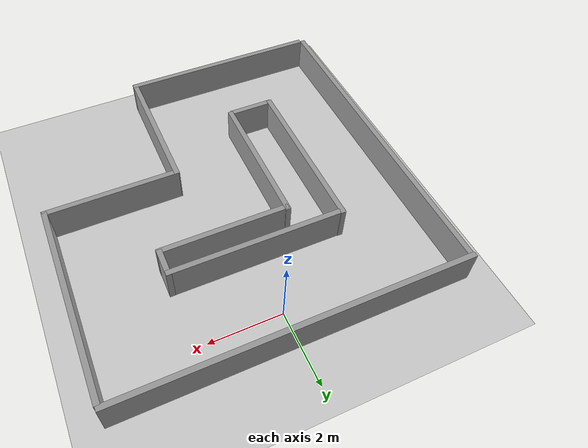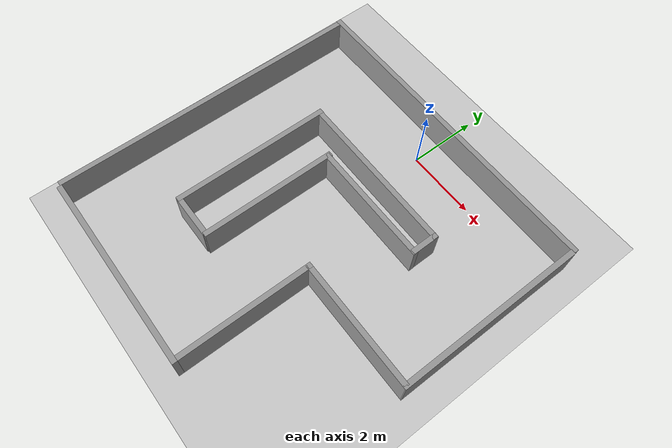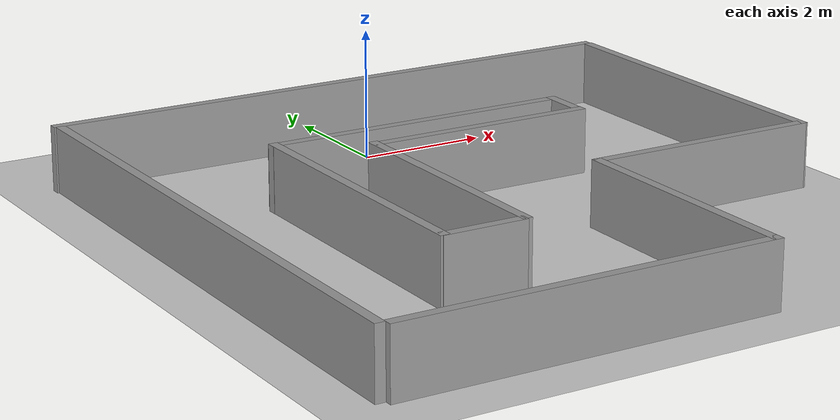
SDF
<sdf version="1.4">
 <world name="default">
  <light name="sun" type="directional">
   <pose>0 0 10 0 -0 0</pose>
   <diffuse>0.8 0.8 0.8 1</diffuse>
   <specular>0.2 0.2 0.2 1</specular>
   <attenuation>
    <range>1000</range>
    <constant>0.9</constant>
    <linear>0.01</linear>
    <quadratic>0.001</quadratic>
   </attenuation>
   <direction>0.5 0.1 -0.9</direction>
  </light>
  <model name="ground_plane">
   <static>1</static>
   <link name="link">
    <collision name="collision">
     <geometry><plane><normal>0 0 1</normal><size>100 100</size></plane></geometry>
     <surface><friction><ode><mu>100</mu><mu2>50</mu2></ode></friction></surface>
    </collision>
    <visual name="visual">
     <cast_shadows>0</cast_shadows>
     <geometry><plane><normal>0 0 1</normal><size>100 100</size></plane></geometry>
     <material>
      <script><uri>file://media/materials/scripts/gazebo.material</uri><name>Gazebo/Grey</name></script>
     </material>
    </visual>
    <velocity_decay><linear>0</linear><angular>0</angular></velocity_decay>
   </link>
  </model>
  <scene><ambient>0.4 0.4 0.4 1</ambient><background>0.7 0.7 0.7 1</background><shadows>0</shadows></scene>
  <physics type="ode">
   <max_step_size>0.01</max_step_size>
   <real_time_factor>1</real_time_factor>
   <real_time_update_rate>0</real_time_update_rate>
   <gravity>0 0 -9.8</gravity>
  </physics>
  <include><uri>model://Circuit_ql_3</uri><pose>0 -3.85 0 0 0 1.567</pose></include>
 </world>
</sdf>

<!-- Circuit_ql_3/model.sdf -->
<sdf version='1.6'>
  <model name='Circuit_ql_3'>
    <link name='Wall_0'>
      <pose frame=''>-4.6 1.725 0 0 0 -1.5708</pose>
      <self_collide>0</self_collide>
      <kinematic>0</kinematic>
      <visual name='Wall_0_Visual'>
        <pose frame=''>0 0 0.5 0 -0 0</pose>
        <geometry>
          <box>
            <size>5.75 0.15 1</size>
          </box>
        </geometry>
        <material>
          <script>
            <uri>file://media/materials/scripts/gazebo.material</uri>
            <name>Gazebo/Grey</name>
          </script>
          <ambient>1 1 1 1</ambient>
          <diffuse>0.7 0.7 0.7 1</diffuse>
          <specular>0.01 0.01 0.01 1</specular>
          <emissive>0 0 0 1</emissive>
        </material>
        <cast_shadows>1</cast_shadows>
        <transparency>0</transparency>
      </visual>
      <collision name='Wall_0_Collision'>
        <laser_retro>0</laser_retro>
        <max_contacts>10</max_contacts>
        <pose frame=''>0 0 0.5 0 -0 0</pose>
        <geometry>
          <box>
            <size>5.75 0.15 1</size>
          </box>
        </geometry>
        <surface>
          <friction>
            <ode>
              <mu>1</mu>
              <mu2>1</mu2>
              <fdir1>0 0 0</fdir1>
              <slip1>0</slip1>
              <slip2>0</slip2>
            </ode>
            <torsional>
              <coefficient>1</coefficient>
              <patch_radius>0</patch_radius>
              <surface_radius>0</surface_radius>
              <use_patch_radius>1</use_patch_radius>
              <ode>
                <slip>0</slip>
              </ode>
            </torsional>
          </friction>
          <bounce>
            <restitution_coefficient>0</restitution_coefficient>
            <threshold>1e+06</threshold>
          </bounce>
          <contact>
            <collide_without_contact>0</collide_without_contact>
            <collide_without_contact_bitmask>1</collide_without_contact_bitmask>
            <collide_bitmask>1</collide_bitmask>
            <ode>
              <soft_cfm>0</soft_cfm>
              <soft_erp>0.2</soft_erp>
              <kp>1e+13</kp>
              <kd>1</kd>
              <max_vel>0.01</max_vel>
              <min_depth>0</min_depth>
            </ode>
            <bullet>
              <split_impulse>1</split_impulse>
              <split_impulse_penetration_threshold>-0.01</split_impulse_penetration_threshold>
              <soft_cfm>0</soft_cfm>
              <soft_erp>0.2</soft_erp>
              <kp>1e+13</kp>
              <kd>1</kd>
            </bullet>
          </contact>
        </surface>
      </collision>
    </link>
    <link name='Wall_1'>
      <pose frame=''>-2.675 -1.075 0 0 -0 0</pose>
      <self_collide>0</self_collide>
      <kinematic>0</kinematic>
      <visual name='Wall_1_Visual'>
        <pose frame=''>0 0 0.5 0 -0 0</pose>
        <geometry>
          <box>
            <size>4 0.15 1</size>
          </box>
        </geometry>
        <material>
          <script>
            <uri>file://media/materials/scripts/gazebo.material</uri>
            <name>Gazebo/Grey</name>
          </script>
          <ambient>1 1 1 1</ambient>
          <diffuse>0.7 0.7 0.7 1</diffuse>
          <specular>0.01 0.01 0.01 1</specular>
          <emissive>0 0 0 1</emissive>
        </material>
        <cast_shadows>1</cast_shadows>
        <transparency>0</transparency>
      </visual>
      <collision name='Wall_1_Collision'>
        <laser_retro>0</laser_retro>
        <max_contacts>10</max_contacts>
        <pose frame=''>0 0 0.5 0 -0 0</pose>
        <geometry>
          <box>
            <size>4 0.15 1</size>
          </box>
        </geometry>
        <surface>
          <friction>
            <ode>
              <mu>1</mu>
              <mu2>1</mu2>
              <fdir1>0 0 0</fdir1>
              <slip1>0</slip1>
              <slip2>0</slip2>
            </ode>
            <torsional>
              <coefficient>1</coefficient>
              <patch_radius>0</patch_radius>
              <surface_radius>0</surface_radius>
              <use_patch_radius>1</use_patch_radius>
              <ode>
                <slip>0</slip>
              </ode>
            </torsional>
          </friction>
          <bounce>
            <restitution_coefficient>0</restitution_coefficient>
            <threshold>1e+06</threshold>
          </bounce>
          <contact>
            <collide_without_contact>0</collide_without_contact>
            <collide_without_contact_bitmask>1</collide_without_contact_bitmask>
            <collide_bitmask>1</collide_bitmask>
            <ode>
              <soft_cfm>0</soft_cfm>
              <soft_erp>0.2</soft_erp>
              <kp>1e+13</kp>
              <kd>1</kd>
              <max_vel>0.01</max_vel>
              <min_depth>0</min_depth>
            </ode>
            <bullet>
              <split_impulse>1</split_impulse>
              <split_impulse_penetration_threshold>-0.01</split_impulse_penetration_threshold>
              <soft_cfm>0</soft_cfm>
              <soft_erp>0.2</soft_erp>
              <kp>1e+13</kp>
              <kd>1</kd>
            </bullet>
          </contact>
        </surface>
      </collision>
    </link>
    <link name='Wall_11'>
      <pose frame=''>-2.29861 1.81753 0 0 0 -1.5708</pose>
      <self_collide>0</self_collide>
      <kinematic>0</kinematic>
      <inertial>
        <inertia>
          <ixx>nan</ixx>
          <ixy>0</ixy>
          <ixz>0</ixz>
          <iyy>nan</iyy>
          <iyz>0</iyz>
          <izz>nan</izz>
        </inertia>
        <mass>0</mass>
        <pose frame=''>0 0 0 0 -0 0</pose>
      </inertial>
      <visual name='Wall_11_Visual'>
        <pose frame=''>0 0 0.5 0 -0 0</pose>
        <geometry>
          <box>
            <size>1.28898 0.15 1</size>
          </box>
        </geometry>
        <material>
          <script>
            <uri>file://media/materials/scripts/gazebo.material</uri>
            <name>Gazebo/Grey</name>
          </script>
          <ambient>1 1 1 1</ambient>
          <diffuse>0.7 0.7 0.7 1</diffuse>
          <specular>0.01 0.01 0.01 1</specular>
          <emissive>0 0 0 1</emissive>
        </material>
        <cast_shadows>1</cast_shadows>
        <transparency>0</transparency>
      </visual>
      <collision name='Wall_11_Collision'>
        <laser_retro>0</laser_retro>
        <max_contacts>10</max_contacts>
        <pose frame=''>0 0 0.5 0 -0 0</pose>
        <geometry>
          <box>
            <size>1.28898 0.15 1</size>
          </box>
        </geometry>
        <surface>
          <friction>
            <ode>
              <mu>1</mu>
              <mu2>1</mu2>
              <fdir1>0 0 0</fdir1>
              <slip1>0</slip1>
              <slip2>0</slip2>
            </ode>
            <torsional>
              <coefficient>1</coefficient>
              <patch_radius>0</patch_radius>
              <surface_radius>0</surface_radius>
              <use_patch_radius>1</use_patch_radius>
              <ode>
                <slip>0</slip>
              </ode>
            </torsional>
          </friction>
          <bounce>
            <restitution_coefficient>0</restitution_coefficient>
            <threshold>1e+06</threshold>
          </bounce>
          <contact>
            <collide_without_contact>0</collide_without_contact>
            <collide_without_contact_bitmask>1</collide_without_contact_bitmask>
            <collide_bitmask>1</collide_bitmask>
            <ode>
              <soft_cfm>0</soft_cfm>
              <soft_erp>0.2</soft_erp>
              <kp>1e+13</kp>
              <kd>1</kd>
              <max_vel>0.01</max_vel>
              <min_depth>0</min_depth>
            </ode>
            <bullet>
              <split_impulse>1</split_impulse>
              <split_impulse_penetration_threshold>-0.01</split_impulse_penetration_threshold>
              <soft_cfm>0</soft_cfm>
              <soft_erp>0.2</soft_erp>
              <kp>1e+13</kp>
              <kd>1</kd>
            </bullet>
          </contact>
        </surface>
      </collision>
    </link>
    <link name='Wall_12'>
      <pose frame=''>-0.348583 1.17159 0 0 -0 0</pose>
      <self_collide>0</self_collide>
      <kinematic>0</kinematic>
      <visual name='Wall_12_Visual'>
        <pose frame=''>0 0 0.5 0 -0 0</pose>
        <geometry>
          <box>
            <size>4 0.15 1</size>
          </box>
        </geometry>
        <material>
          <script>
            <uri>file://media/materials/scripts/gazebo.material</uri>
            <name>Gazebo/Grey</name>
          </script>
          <ambient>1 1 1 1</ambient>
          <diffuse>0.7 0.7 0.7 1</diffuse>
          <specular>0.01 0.01 0.01 1</specular>
          <emissive>0 0 0 1</emissive>
        </material>
        <cast_shadows>1</cast_shadows>
        <transparency>0</transparency>
      </visual>
      <collision name='Wall_12_Collision'>
        <laser_retro>0</laser_retro>
        <max_contacts>10</max_contacts>
        <pose frame=''>0 0 0.5 0 -0 0</pose>
        <geometry>
          <box>
            <size>4 0.15 1</size>
          </box>
        </geometry>
        <surface>
          <friction>
            <ode>
              <mu>1</mu>
              <mu2>1</mu2>
              <fdir1>0 0 0</fdir1>
              <slip1>0</slip1>
              <slip2>0</slip2>
            </ode>
            <torsional>
              <coefficient>1</coefficient>
              <patch_radius>0</patch_radius>
              <surface_radius>0</surface_radius>
              <use_patch_radius>1</use_patch_radius>
              <ode>
                <slip>0</slip>
              </ode>
            </torsional>
          </friction>
          <bounce>
            <restitution_coefficient>0</restitution_coefficient>
            <threshold>1e+06</threshold>
          </bounce>
          <contact>
            <collide_without_contact>0</collide_without_contact>
            <collide_without_contact_bitmask>1</collide_without_contact_bitmask>
            <collide_bitmask>1</collide_bitmask>
            <ode>
              <soft_cfm>0</soft_cfm>
              <soft_erp>0.2</soft_erp>
              <kp>1e+13</kp>
              <kd>1</kd>
              <max_vel>0.01</max_vel>
              <min_depth>0</min_depth>
            </ode>
            <bullet>
              <split_impulse>1</split_impulse>
              <split_impulse_penetration_threshold>-0.01</split_impulse_penetration_threshold>
              <soft_cfm>0</soft_cfm>
              <soft_erp>0.2</soft_erp>
              <kp>1e+13</kp>
              <kd>1</kd>
            </bullet>
          </contact>
        </surface>
      </collision>
    </link>
    <link name='Wall_13'>
      <pose frame=''>1.5425 -0.591157 0 0 0 -1.5708</pose>
      <self_collide>0</self_collide>
      <kinematic>0</kinematic>
      <inertial>
        <inertia>
          <ixx>nan</ixx>
          <ixy>0</ixy>
          <ixz>0</ixz>
          <iyy>nan</iyy>
          <iyz>0</iyz>
          <izz>nan</izz>
        </inertia>
        <mass>0</mass>
        <pose frame=''>0 0 0 0 -0 0</pose>
      </inertial>
      <visual name='Wall_13_Visual'>
        <pose frame=''>0 0 0.5 0 -0 0</pose>
        <geometry>
          <box>
            <size>3.60771 0.15 1</size>
          </box>
        </geometry>
        <material>
          <script>
            <uri>file://media/materials/scripts/gazebo.material</uri>
            <name>Gazebo/Grey</name>
          </script>
          <ambient>1 1 1 1</ambient>
          <diffuse>0.7 0.7 0.7 1</diffuse>
          <specular>0.01 0.01 0.01 1</specular>
          <emissive>0 0 0 1</emissive>
        </material>
        <cast_shadows>1</cast_shadows>
        <transparency>0</transparency>
      </visual>
      <collision name='Wall_13_Collision'>
        <laser_retro>0</laser_retro>
        <max_contacts>10</max_contacts>
        <pose frame=''>0 0 0.5 0 -0 0</pose>
        <geometry>
          <box>
            <size>3.60771 0.15 1</size>
          </box>
        </geometry>
        <surface>
          <friction>
            <ode>
              <mu>1</mu>
              <mu2>1</mu2>
              <fdir1>0 0 0</fdir1>
              <slip1>0</slip1>
              <slip2>0</slip2>
            </ode>
            <torsional>
              <coefficient>1</coefficient>
              <patch_radius>0</patch_radius>
              <surface_radius>0</surface_radius>
              <use_patch_radius>1</use_patch_radius>
              <ode>
                <slip>0</slip>
              </ode>
            </torsional>
          </friction>
          <bounce>
            <restitution_coefficient>0</restitution_coefficient>
            <threshold>1e+06</threshold>
          </bounce>
          <contact>
            <collide_without_contact>0</collide_without_contact>
            <collide_without_contact_bitmask>1</collide_without_contact_bitmask>
            <collide_bitmask>1</collide_bitmask>
            <ode>
              <soft_cfm>0</soft_cfm>
              <soft_erp>0.2</soft_erp>
              <kp>1e+13</kp>
              <kd>1</kd>
              <max_vel>0.01</max_vel>
              <min_depth>0</min_depth>
            </ode>
            <bullet>
              <split_impulse>1</split_impulse>
              <split_impulse_penetration_threshold>-0.01</split_impulse_penetration_threshold>
              <soft_cfm>0</soft_cfm>
              <soft_erp>0.2</soft_erp>
              <kp>1e+13</kp>
              <kd>1</kd>
            </bullet>
          </contact>
        </surface>
      </collision>
    </link>
    <link name='Wall_14'>
      <pose frame=''>1.9 -2.31321 0 0 -0 0</pose>
      <self_collide>0</self_collide>
      <kinematic>0</kinematic>
      <inertial>
        <inertia>
          <ixx>nan</ixx>
          <ixy>0</ixy>
          <ixz>0</ixz>
          <iyy>nan</iyy>
          <iyz>0</iyz>
          <izz>nan</izz>
        </inertia>
        <mass>0</mass>
        <pose frame=''>0 0 0 0 -0 0</pose>
      </inertial>
      <visual name='Wall_14_Visual'>
        <pose frame=''>0 0 0.5 0 -0 0</pose>
        <geometry>
          <box>
            <size>0.795783 0.15 1</size>
          </box>
        </geometry>
        <material>
          <script>
            <uri>file://media/materials/scripts/gazebo.material</uri>
            <name>Gazebo/Grey</name>
          </script>
          <ambient>1 1 1 1</ambient>
          <diffuse>0.7 0.7 0.7 1</diffuse>
          <specular>0.01 0.01 0.01 1</specular>
          <emissive>0 0 0 1</emissive>
        </material>
        <cast_shadows>1</cast_shadows>
        <transparency>0</transparency>
      </visual>
      <collision name='Wall_14_Collision'>
        <laser_retro>0</laser_retro>
        <max_contacts>10</max_contacts>
        <pose frame=''>0 0 0.5 0 -0 0</pose>
        <geometry>
          <box>
            <size>0.795783 0.15 1</size>
          </box>
        </geometry>
        <surface>
          <friction>
            <ode>
              <mu>1</mu>
              <mu2>1</mu2>
              <fdir1>0 0 0</fdir1>
              <slip1>0</slip1>
              <slip2>0</slip2>
            </ode>
            <torsional>
              <coefficient>1</coefficient>
              <patch_radius>0</patch_radius>
              <surface_radius>0</surface_radius>
              <use_patch_radius>1</use_patch_radius>
              <ode>
                <slip>0</slip>
              </ode>
            </torsional>
          </friction>
          <bounce>
            <restitution_coefficient>0</restitution_coefficient>
            <threshold>1e+06</threshold>
          </bounce>
          <contact>
            <collide_without_contact>0</collide_without_contact>
            <collide_without_contact_bitmask>1</collide_without_contact_bitmask>
            <collide_bitmask>1</collide_bitmask>
            <ode>
              <soft_cfm>0</soft_cfm>
              <soft_erp>0.2</soft_erp>
              <kp>1e+13</kp>
              <kd>1</kd>
              <max_vel>0.01</max_vel>
              <min_depth>0</min_depth>
            </ode>
            <bullet>
              <split_impulse>1</split_impulse>
              <split_impulse_penetration_threshold>-0.01</split_impulse_penetration_threshold>
              <soft_cfm>0</soft_cfm>
              <soft_erp>0.2</soft_erp>
              <kp>1e+13</kp>
              <kd>1</kd>
            </bullet>
          </contact>
        </surface>
      </collision>
    </link>
    <link name='Wall_15'>
      <pose frame=''>2.22561 0.063707 0 0 -0 1.56823</pose>
      <self_collide>0</self_collide>
      <kinematic>0</kinematic>
      <inertial>
        <inertia>
          <ixx>nan</ixx>
          <ixy>0</ixy>
          <ixz>0</ixz>
          <iyy>nan</iyy>
          <iyz>0</iyz>
          <izz>nan</izz>
        </inertia>
        <mass>0</mass>
        <pose frame=''>0 0 0 0 -0 0</pose>
      </inertial>
      <visual name='Wall_15_Visual'>
        <pose frame=''>0 0 0.5 0 -0 0</pose>
        <geometry>
          <box>
            <size>4.8823 0.15 1</size>
          </box>
        </geometry>
        <material>
          <script>
            <uri>file://media/materials/scripts/gazebo.material</uri>
            <name>Gazebo/Grey</name>
          </script>
          <ambient>1 1 1 1</ambient>
          <diffuse>0.7 0.7 0.7 1</diffuse>
          <specular>0.01 0.01 0.01 1</specular>
          <emissive>0 0 0 1</emissive>
        </material>
        <cast_shadows>1</cast_shadows>
        <transparency>0</transparency>
      </visual>
      <collision name='Wall_15_Collision'>
        <laser_retro>0</laser_retro>
        <max_contacts>10</max_contacts>
        <pose frame=''>0 0 0.5 0 -0 0</pose>
        <geometry>
          <box>
            <size>4.8823 0.15 1</size>
          </box>
        </geometry>
        <surface>
          <friction>
            <ode>
              <mu>1</mu>
              <mu2>1</mu2>
              <fdir1>0 0 0</fdir1>
              <slip1>0</slip1>
              <slip2>0</slip2>
            </ode>
            <torsional>
              <coefficient>1</coefficient>
              <patch_radius>0</patch_radius>
              <surface_radius>0</surface_radius>
              <use_patch_radius>1</use_patch_radius>
              <ode>
                <slip>0</slip>
              </ode>
            </torsional>
          </friction>
          <bounce>
            <restitution_coefficient>0</restitution_coefficient>
            <threshold>1e+06</threshold>
          </bounce>
          <contact>
            <collide_without_contact>0</collide_without_contact>
            <collide_without_contact_bitmask>1</collide_without_contact_bitmask>
            <collide_bitmask>1</collide_bitmask>
            <ode>
              <soft_cfm>0</soft_cfm>
              <soft_erp>0.2</soft_erp>
              <kp>1e+13</kp>
              <kd>1</kd>
              <max_vel>0.01</max_vel>
              <min_depth>0</min_depth>
            </ode>
            <bullet>
              <split_impulse>1</split_impulse>
              <split_impulse_penetration_threshold>-0.01</split_impulse_penetration_threshold>
              <soft_cfm>0</soft_cfm>
              <soft_erp>0.2</soft_erp>
              <kp>1e+13</kp>
              <kd>1</kd>
            </bullet>
          </contact>
        </surface>
      </collision>
    </link>
    <link name='Wall_16'>
      <pose frame=''>-0.020001 2.42713 0 0 -0 3.14159</pose>
      <self_collide>0</self_collide>
      <kinematic>0</kinematic>
      <inertial>
        <inertia>
          <ixx>nan</ixx>
          <ixy>0</ixy>
          <ixz>0</ixz>
          <iyy>nan</iyy>
          <iyz>0</iyz>
          <izz>nan</izz>
        </inertia>
        <mass>0</mass>
        <pose frame=''>0 0 0 0 -0 0</pose>
      </inertial>
      <visual name='Wall_16_Visual'>
        <pose frame=''>0 0 0.5 0 -0 0</pose>
        <geometry>
          <box>
            <size>4.67944 0.15 1</size>
          </box>
        </geometry>
        <material>
          <script>
            <uri>file://media/materials/scripts/gazebo.material</uri>
            <name>Gazebo/Grey</name>
          </script>
          <ambient>1 1 1 1</ambient>
          <diffuse>0.7 0.7 0.7 1</diffuse>
          <specular>0.01 0.01 0.01 1</specular>
          <emissive>0 0 0 1</emissive>
        </material>
        <cast_shadows>1</cast_shadows>
        <transparency>0</transparency>
      </visual>
      <collision name='Wall_16_Collision'>
        <laser_retro>0</laser_retro>
        <max_contacts>10</max_contacts>
        <pose frame=''>0 0 0.5 0 -0 0</pose>
        <geometry>
          <box>
            <size>4.67944 0.15 1</size>
          </box>
        </geometry>
        <surface>
          <friction>
            <ode>
              <mu>1</mu>
              <mu2>1</mu2>
              <fdir1>0 0 0</fdir1>
              <slip1>0</slip1>
              <slip2>0</slip2>
            </ode>
            <torsional>
              <coefficient>1</coefficient>
              <patch_radius>0</patch_radius>
              <surface_radius>0</surface_radius>
              <use_patch_radius>1</use_patch_radius>
              <ode>
                <slip>0</slip>
              </ode>
            </torsional>
          </friction>
          <bounce>
            <restitution_coefficient>0</restitution_coefficient>
            <threshold>1e+06</threshold>
          </bounce>
          <contact>
            <collide_without_contact>0</collide_without_contact>
            <collide_without_contact_bitmask>1</collide_without_contact_bitmask>
            <collide_bitmask>1</collide_bitmask>
            <ode>
              <soft_cfm>0</soft_cfm>
              <soft_erp>0.2</soft_erp>
              <kp>1e+13</kp>
              <kd>1</kd>
              <max_vel>0.01</max_vel>
              <min_depth>0</min_depth>
            </ode>
            <bullet>
              <split_impulse>1</split_impulse>
              <split_impulse_penetration_threshold>-0.01</split_impulse_penetration_threshold>
              <soft_cfm>0</soft_cfm>
              <soft_erp>0.2</soft_erp>
              <kp>1e+13</kp>
              <kd>1</kd>
            </bullet>
          </contact>
        </surface>
      </collision>
    </link>
    <link name='Wall_2'>
      <pose frame=''>-0.75 -2.875 0 0 0 -1.5708</pose>
      <self_collide>0</self_collide>
      <kinematic>0</kinematic>
      <visual name='Wall_2_Visual'>
        <pose frame=''>0 0 0.5 0 -0 0</pose>
        <geometry>
          <box>
            <size>3.7 0.15 1</size>
          </box>
        </geometry>
        <material>
          <script>
            <uri>file://media/materials/scripts/gazebo.material</uri>
            <name>Gazebo/Grey</name>
          </script>
          <ambient>1 1 1 1</ambient>
          <diffuse>0.7 0.7 0.7 1</diffuse>
          <specular>0.01 0.01 0.01 1</specular>
          <emissive>0 0 0 1</emissive>
        </material>
        <cast_shadows>1</cast_shadows>
        <transparency>0</transparency>
      </visual>
      <collision name='Wall_2_Collision'>
        <laser_retro>0</laser_retro>
        <max_contacts>10</max_contacts>
        <pose frame=''>0 0 0.5 0 -0 0</pose>
        <geometry>
          <box>
            <size>3.7 0.15 1</size>
          </box>
        </geometry>
        <surface>
          <friction>
            <ode>
              <mu>1</mu>
              <mu2>1</mu2>
              <fdir1>0 0 0</fdir1>
              <slip1>0</slip1>
              <slip2>0</slip2>
            </ode>
            <torsional>
              <coefficient>1</coefficient>
              <patch_radius>0</patch_radius>
              <surface_radius>0</surface_radius>
              <use_patch_radius>1</use_patch_radius>
              <ode>
                <slip>0</slip>
              </ode>
            </torsional>
          </friction>
          <bounce>
            <restitution_coefficient>0</restitution_coefficient>
            <threshold>1e+06</threshold>
          </bounce>
          <contact>
            <collide_without_contact>0</collide_without_contact>
            <collide_without_contact_bitmask>1</collide_without_contact_bitmask>
            <collide_bitmask>1</collide_bitmask>
            <ode>
              <soft_cfm>0</soft_cfm>
              <soft_erp>0.2</soft_erp>
              <kp>1e+13</kp>
              <kd>1</kd>
              <max_vel>0.01</max_vel>
              <min_depth>0</min_depth>
            </ode>
            <bullet>
              <split_impulse>1</split_impulse>
              <split_impulse_penetration_threshold>-0.01</split_impulse_penetration_threshold>
              <soft_cfm>0</soft_cfm>
              <soft_erp>0.2</soft_erp>
              <kp>1e+13</kp>
              <kd>1</kd>
            </bullet>
          </contact>
        </surface>
      </collision>
    </link>
    <link name='Wall_3'>
      <pose frame=''>1.925 -4.675 0 0 -0 0</pose>
      <self_collide>0</self_collide>
      <kinematic>0</kinematic>
      <visual name='Wall_3_Visual'>
        <pose frame=''>0 0 0.5 0 -0 0</pose>
        <geometry>
          <box>
            <size>5.5 0.15 1</size>
          </box>
        </geometry>
        <material>
          <script>
            <uri>file://media/materials/scripts/gazebo.material</uri>
            <name>Gazebo/Grey</name>
          </script>
          <ambient>1 1 1 1</ambient>
          <diffuse>0.7 0.7 0.7 1</diffuse>
          <specular>0.01 0.01 0.01 1</specular>
          <emissive>0 0 0 1</emissive>
        </material>
        <cast_shadows>1</cast_shadows>
        <transparency>0</transparency>
      </visual>
      <collision name='Wall_3_Collision'>
        <laser_retro>0</laser_retro>
        <max_contacts>10</max_contacts>
        <pose frame=''>0 0 0.5 0 -0 0</pose>
        <geometry>
          <box>
            <size>5.5 0.15 1</size>
          </box>
        </geometry>
        <surface>
          <friction>
            <ode>
              <mu>1</mu>
              <mu2>1</mu2>
              <fdir1>0 0 0</fdir1>
              <slip1>0</slip1>
              <slip2>0</slip2>
            </ode>
            <torsional>
              <coefficient>1</coefficient>
              <patch_radius>0</patch_radius>
              <surface_radius>0</surface_radius>
              <use_patch_radius>1</use_patch_radius>
              <ode>
                <slip>0</slip>
              </ode>
            </torsional>
          </friction>
          <bounce>
            <restitution_coefficient>0</restitution_coefficient>
            <threshold>1e+06</threshold>
          </bounce>
          <contact>
            <collide_without_contact>0</collide_without_contact>
            <collide_without_contact_bitmask>1</collide_without_contact_bitmask>
            <collide_bitmask>1</collide_bitmask>
            <ode>
              <soft_cfm>0</soft_cfm>
              <soft_erp>0.2</soft_erp>
              <kp>1e+13</kp>
              <kd>1</kd>
              <max_vel>0.01</max_vel>
              <min_depth>0</min_depth>
            </ode>
            <bullet>
              <split_impulse>1</split_impulse>
              <split_impulse_penetration_threshold>-0.01</split_impulse_penetration_threshold>
              <soft_cfm>0</soft_cfm>
              <soft_erp>0.2</soft_erp>
              <kp>1e+13</kp>
              <kd>1</kd>
            </bullet>
          </contact>
        </surface>
      </collision>
    </link>
    <link name='Wall_7'>
      <pose frame=''>4.73005 0.024061 0 0 -0 1.5708</pose>
      <self_collide>0</self_collide>
      <kinematic>0</kinematic>
      <visual name='Wall_7_Visual'>
        <pose frame=''>0 0 0.5 0 -0 0</pose>
        <geometry>
          <box>
            <size>9.5 0.15 1</size>
          </box>
        </geometry>
        <material>
          <script>
            <uri>file://media/materials/scripts/gazebo.material</uri>
            <name>Gazebo/Grey</name>
          </script>
          <ambient>1 1 1 1</ambient>
          <diffuse>0.7 0.7 0.7 1</diffuse>
          <specular>0.01 0.01 0.01 1</specular>
          <emissive>0 0 0 1</emissive>
        </material>
        <cast_shadows>1</cast_shadows>
        <transparency>0</transparency>
      </visual>
      <collision name='Wall_7_Collision'>
        <laser_retro>0</laser_retro>
        <max_contacts>10</max_contacts>
        <pose frame=''>0 0 0.5 0 -0 0</pose>
        <geometry>
          <box>
            <size>9.5 0.15 1</size>
          </box>
        </geometry>
        <surface>
          <friction>
            <ode>
              <mu>1</mu>
              <mu2>1</mu2>
              <fdir1>0 0 0</fdir1>
              <slip1>0</slip1>
              <slip2>0</slip2>
            </ode>
            <torsional>
              <coefficient>1</coefficient>
              <patch_radius>0</patch_radius>
              <surface_radius>0</surface_radius>
              <use_patch_radius>1</use_patch_radius>
              <ode>
                <slip>0</slip>
              </ode>
            </torsional>
          </friction>
          <bounce>
            <restitution_coefficient>0</restitution_coefficient>
            <threshold>1e+06</threshold>
          </bounce>
          <contact>
            <collide_without_contact>0</collide_without_contact>
            <collide_without_contact_bitmask>1</collide_without_contact_bitmask>
            <collide_bitmask>1</collide_bitmask>
            <ode>
              <soft_cfm>0</soft_cfm>
              <soft_erp>0.2</soft_erp>
              <kp>1e+13</kp>
              <kd>1</kd>
              <max_vel>0.01</max_vel>
              <min_depth>0</min_depth>
            </ode>
            <bullet>
              <split_impulse>1</split_impulse>
              <split_impulse_penetration_threshold>-0.01</split_impulse_penetration_threshold>
              <soft_cfm>0</soft_cfm>
              <soft_erp>0.2</soft_erp>
              <kp>1e+13</kp>
              <kd>1</kd>
            </bullet>
          </contact>
        </surface>
      </collision>
    </link>
    <link name='Wall_9'>
      <pose frame=''>0.05 4.675 0 0 -0 3.14159</pose>
      <self_collide>0</self_collide>
      <kinematic>0</kinematic>
      <visual name='Wall_9_Visual'>
        <pose frame=''>0 0 0.5 0 -0 0</pose>
        <geometry>
          <box>
            <size>9.25 0.15 1</size>
          </box>
        </geometry>
        <material>
          <script>
            <uri>file://media/materials/scripts/gazebo.material</uri>
            <name>Gazebo/Grey</name>
          </script>
          <ambient>1 1 1 1</ambient>
          <diffuse>0.7 0.7 0.7 1</diffuse>
          <specular>0.01 0.01 0.01 1</specular>
          <emissive>0 0 0 1</emissive>
        </material>
        <cast_shadows>1</cast_shadows>
        <transparency>0</transparency>
      </visual>
      <collision name='Wall_9_Collision'>
        <laser_retro>0</laser_retro>
        <max_contacts>10</max_contacts>
        <pose frame=''>0 0 0.5 0 -0 0</pose>
        <geometry>
          <box>
            <size>9.25 0.15 1</size>
          </box>
        </geometry>
        <surface>
          <friction>
            <ode>
              <mu>1</mu>
              <mu2>1</mu2>
              <fdir1>0 0 0</fdir1>
              <slip1>0</slip1>
              <slip2>0</slip2>
            </ode>
            <torsional>
              <coefficient>1</coefficient>
              <patch_radius>0</patch_radius>
              <surface_radius>0</surface_radius>
              <use_patch_radius>1</use_patch_radius>
              <ode>
                <slip>0</slip>
              </ode>
            </torsional>
          </friction>
          <bounce>
            <restitution_coefficient>0</restitution_coefficient>
            <threshold>1e+06</threshold>
          </bounce>
          <contact>
            <collide_without_contact>0</collide_without_contact>
            <collide_without_contact_bitmask>1</collide_without_contact_bitmask>
            <collide_bitmask>1</collide_bitmask>
            <ode>
              <soft_cfm>0</soft_cfm>
              <soft_erp>0.2</soft_erp>
              <kp>1e+13</kp>
              <kd>1</kd>
              <max_vel>0.01</max_vel>
              <min_depth>0</min_depth>
            </ode>
            <bullet>
              <split_impulse>1</split_impulse>
              <split_impulse_penetration_threshold>-0.01</split_impulse_penetration_threshold>
              <soft_cfm>0</soft_cfm>
              <soft_erp>0.2</soft_erp>
              <kp>1e+13</kp>
              <kd>1</kd>
            </bullet>
          </contact>
        </surface>
      </collision>
    </link>
    <static>1</static>
    <allow_auto_disable>1</allow_auto_disable>
  </model>
</sdf>
